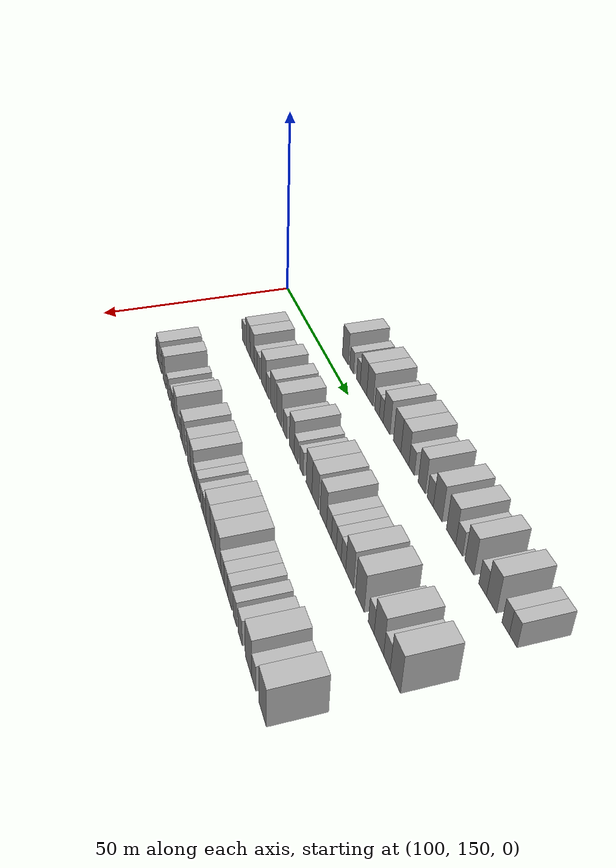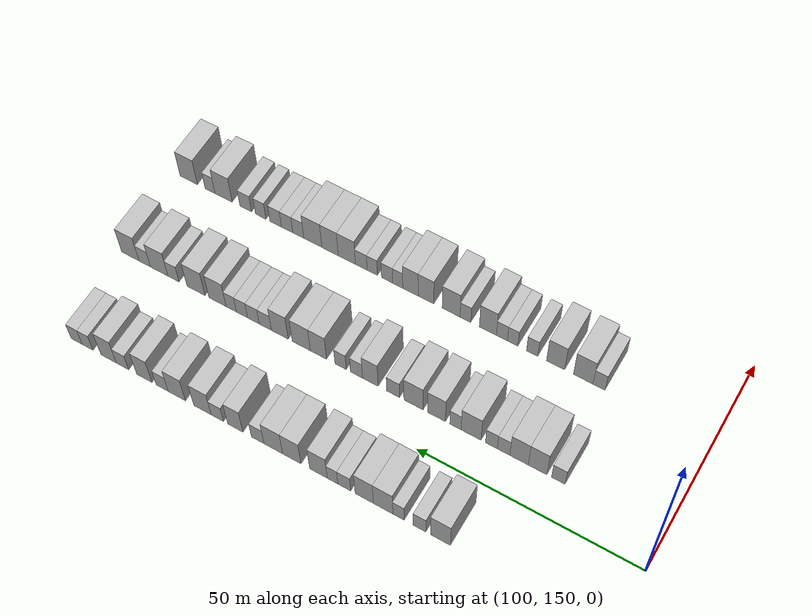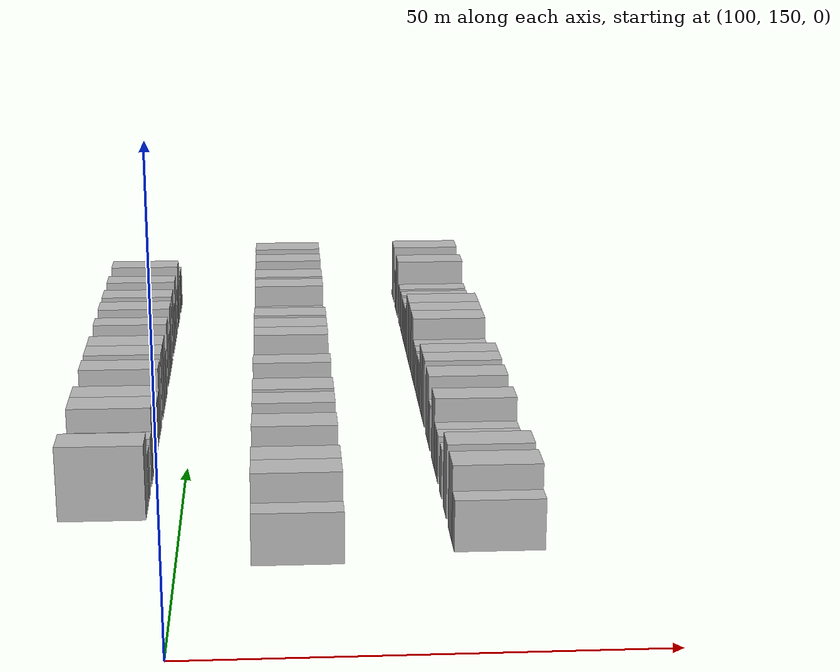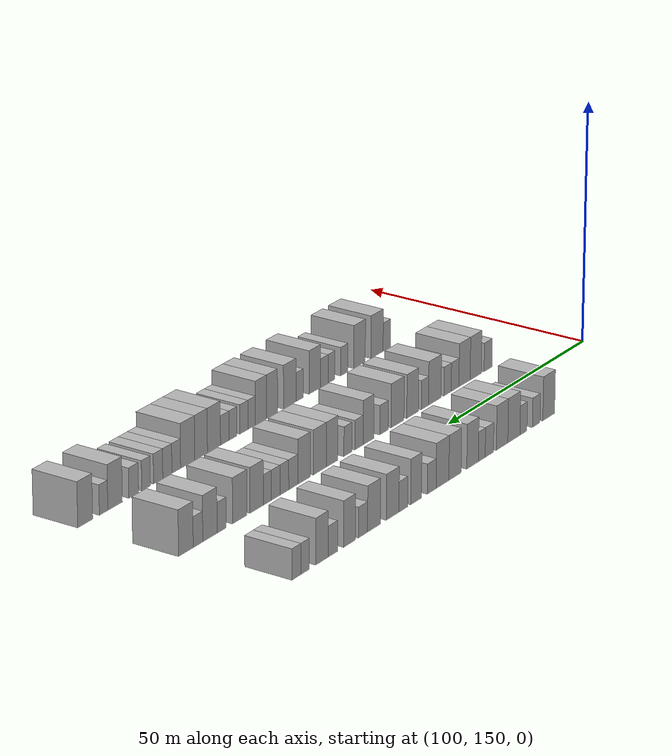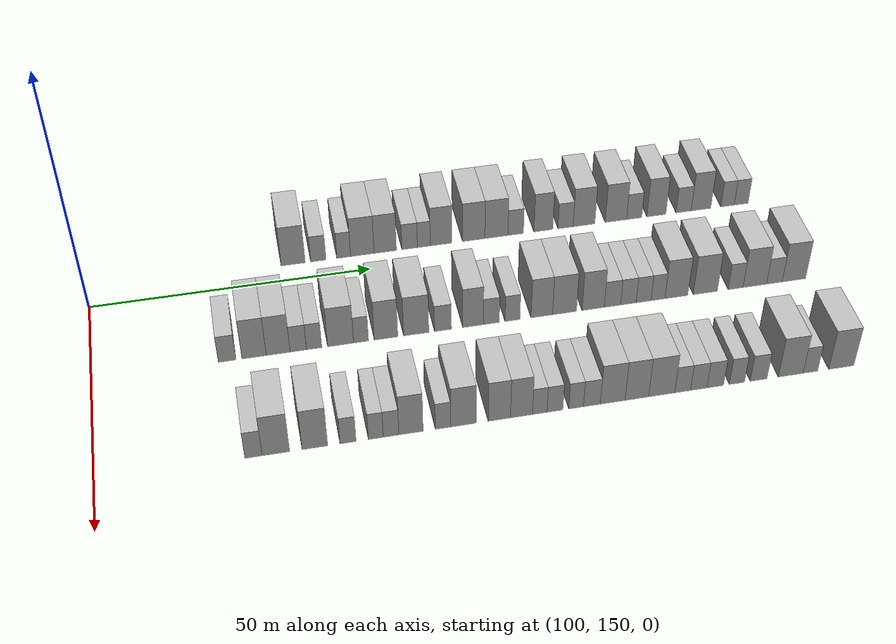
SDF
<sdf version="1.6">
 <world name="default">
  <model name="building_684">
   <static>1</static>
   <pose>91.0000 186.5181 0 0.000000 0.000000 0.000000</pose>
   <link name="link">
    <pose>0 0 4.50 0 0 0</pose>
    <collision name="collision"><geometry><box><size>10.0000 4.3812 9.0000</size></box></geometry></collision>
    <visual name="visual">
     <cast_shadows>0</cast_shadows>
     <geometry><box><size>10.0000 4.3812 9.0000</size></box></geometry>
     <material>
      <script>
       <uri>model://HANNAS_wall/materials/scripts</uri>
       <uri>model://HANNAS_wall/materials/textures</uri>
       <name>vrc/HANNAS_wall</name>
      </script>
     </material>
    </visual>
   </link>
  </model>
  <model name="building_685">
   <static>1</static>
   <pose>91.0000 191.1073 0 0.000000 0.000000 0.000000</pose>
   <link name="link">
    <pose>0 0 3.00 0 0 0</pose>
    <collision name="collision"><geometry><box><size>10.0000 2.7972 6.0000</size></box></geometry></collision>
    <visual name="visual">
     <cast_shadows>0</cast_shadows>
     <geometry><box><size>10.0000 2.7972 6.0000</size></box></geometry>
     <material>
      <script>
       <uri>model://HANNAS_wall/materials/scripts</uri>
       <uri>model://HANNAS_wall/materials/textures</uri>
       <name>vrc/HANNAS_wall</name>
      </script>
     </material>
    </visual>
   </link>
  </model>
  <model name="building_686">
   <static>1</static>
   <pose>91.0000 195.7642 0 0.000000 0.000000 0.000000</pose>
   <link name="link">
    <pose>0 0 3.00 0 0 0</pose>
    <collision name="collision"><geometry><box><size>10.0000 2.5166 6.0000</size></box></geometry></collision>
    <visual name="visual">
     <cast_shadows>0</cast_shadows>
     <geometry><box><size>10.0000 2.5166 6.0000</size></box></geometry>
     <material>
      <script>
       <uri>model://HANNAS_wall/materials/scripts</uri>
       <uri>model://HANNAS_wall/materials/textures</uri>
       <name>vrc/HANNAS_wall</name>
      </script>
     </material>
    </visual>
   </link>
  </model>
  <model name="building_687">
   <static>1</static>
   <pose>91.0000 199.1977 0 0.000000 0.000000 0.000000</pose>
   <link name="link">
    <pose>0 0 4.50 0 0 0</pose>
    <collision name="collision"><geometry><box><size>10.0000 4.3504 9.0000</size></box></geometry></collision>
    <visual name="visual">
     <cast_shadows>0</cast_shadows>
     <geometry><box><size>10.0000 4.3504 9.0000</size></box></geometry>
     <material>
      <script>
       <uri>model://HANNAS_wall/materials/scripts</uri>
       <uri>model://HANNAS_wall/materials/textures</uri>
       <name>vrc/HANNAS_wall</name>
      </script>
     </material>
    </visual>
   </link>
  </model>
  <model name="building_688">
   <static>1</static>
   <pose>91.0000 203.4393 0 0.000000 0.000000 0.000000</pose>
   <link name="link">
    <pose>0 0 4.50 0 0 0</pose>
    <collision name="collision"><geometry><box><size>10.0000 4.1327 9.0000</size></box></geometry></collision>
    <visual name="visual">
     <cast_shadows>0</cast_shadows>
     <geometry><box><size>10.0000 4.1327 9.0000</size></box></geometry>
     <material>
      <script>
       <uri>model://HANNAS_wall/materials/scripts</uri>
       <uri>model://HANNAS_wall/materials/textures</uri>
       <name>vrc/HANNAS_wall</name>
      </script>
     </material>
    </visual>
   </link>
  </model>
  <model name="building_689">
   <static>1</static>
   <pose>91.0000 207.9620 0 0.000000 0.000000 0.000000</pose>
   <link name="link">
    <pose>0 0 3.00 0 0 0</pose>
    <collision name="collision"><geometry><box><size>10.0000 2.9127 6.0000</size></box></geometry></collision>
    <visual name="visual">
     <cast_shadows>0</cast_shadows>
     <geometry><box><size>10.0000 2.9127 6.0000</size></box></geometry>
     <material>
      <script>
       <uri>model://HANNAS_wall/materials/scripts</uri>
       <uri>model://HANNAS_wall/materials/textures</uri>
       <name>vrc/HANNAS_wall</name>
      </script>
     </material>
    </visual>
   </link>
  </model>
  <model name="building_690">
   <static>1</static>
   <pose>91.0000 210.6189 0 0.000000 0.000000 0.000000</pose>
   <link name="link">
    <pose>0 0 3.00 0 0 0</pose>
    <collision name="collision"><geometry><box><size>10.0000 2.4012 6.0000</size></box></geometry></collision>
    <visual name="visual">
     <cast_shadows>0</cast_shadows>
     <geometry><box><size>10.0000 2.4012 6.0000</size></box></geometry>
     <material>
      <script>
       <uri>model://HANNAS_wall/materials/scripts</uri>
       <uri>model://HANNAS_wall/materials/textures</uri>
       <name>vrc/HANNAS_wall</name>
      </script>
     </material>
    </visual>
   </link>
  </model>
  <model name="building_691">
   <static>1</static>
   <pose>91.0000 213.8402 0 0.000000 0.000000 0.000000</pose>
   <link name="link">
    <pose>0 0 4.50 0 0 0</pose>
    <collision name="collision"><geometry><box><size>10.0000 4.0415 9.0000</size></box></geometry></collision>
    <visual name="visual">
     <cast_shadows>0</cast_shadows>
     <geometry><box><size>10.0000 4.0415 9.0000</size></box></geometry>
     <material>
      <script>
       <uri>model://HANNAS_wall/materials/scripts</uri>
       <uri>model://HANNAS_wall/materials/textures</uri>
       <name>vrc/HANNAS_wall</name>
      </script>
     </material>
    </visual>
   </link>
  </model>
  <model name="building_692">
   <static>1</static>
   <pose>91.0000 219.9657 0 0.000000 0.000000 0.000000</pose>
   <link name="link">
    <pose>0 0 4.50 0 0 0</pose>
    <collision name="collision"><geometry><box><size>10.0000 4.2094 9.0000</size></box></geometry></collision>
    <visual name="visual">
     <cast_shadows>0</cast_shadows>
     <geometry><box><size>10.0000 4.2094 9.0000</size></box></geometry>
     <material>
      <script>
       <uri>model://HANNAS_wall/materials/scripts</uri>
       <uri>model://HANNAS_wall/materials/textures</uri>
       <name>vrc/HANNAS_wall</name>
      </script>
     </material>
    </visual>
   </link>
  </model>
  <model name="building_693">
   <static>1</static>
   <pose>91.0000 224.2515 0 0.000000 0.000000 0.000000</pose>
   <link name="link">
    <pose>0 0 4.50 0 0 0</pose>
    <collision name="collision"><geometry><box><size>10.0000 4.3622 9.0000</size></box></geometry></collision>
    <visual name="visual">
     <cast_shadows>0</cast_shadows>
     <geometry><box><size>10.0000 4.3622 9.0000</size></box></geometry>
     <material>
      <script>
       <uri>model://HANNAS_wall/materials/scripts</uri>
       <uri>model://HANNAS_wall/materials/textures</uri>
       <name>vrc/HANNAS_wall</name>
      </script>
     </material>
    </visual>
   </link>
  </model>
  <model name="building_694">
   <static>1</static>
   <pose>91.0000 227.9071 0 0.000000 0.000000 0.000000</pose>
   <link name="link">
    <pose>0 0 3.00 0 0 0</pose>
    <collision name="collision"><geometry><box><size>10.0000 2.9490 6.0000</size></box></geometry></collision>
    <visual name="visual">
     <cast_shadows>0</cast_shadows>
     <geometry><box><size>10.0000 2.9490 6.0000</size></box></geometry>
     <material>
      <script>
       <uri>model://HANNAS_wall/materials/scripts</uri>
       <uri>model://HANNAS_wall/materials/textures</uri>
       <name>vrc/HANNAS_wall</name>
      </script>
     </material>
    </visual>
   </link>
  </model>
  <model name="building_695">
   <static>1</static>
   <pose>91.0000 233.1843 0 0.000000 0.000000 0.000000</pose>
   <link name="link">
    <pose>0 0 4.50 0 0 0</pose>
    <collision name="collision"><geometry><box><size>10.0000 3.6054 9.0000</size></box></geometry></collision>
    <visual name="visual">
     <cast_shadows>0</cast_shadows>
     <geometry><box><size>10.0000 3.6054 9.0000</size></box></geometry>
     <material>
      <script>
       <uri>model://HANNAS_wall/materials/scripts</uri>
       <uri>model://HANNAS_wall/materials/textures</uri>
       <name>vrc/HANNAS_wall</name>
      </script>
     </material>
    </visual>
   </link>
  </model>
  <model name="building_696">
   <static>1</static>
   <pose>91.0000 237.4437 0 0.000000 0.000000 0.000000</pose>
   <link name="link">
    <pose>0 0 3.00 0 0 0</pose>
    <collision name="collision"><geometry><box><size>10.0000 2.9135 6.0000</size></box></geometry></collision>
    <visual name="visual">
     <cast_shadows>0</cast_shadows>
     <geometry><box><size>10.0000 2.9135 6.0000</size></box></geometry>
     <material>
      <script>
       <uri>model://HANNAS_wall/materials/scripts</uri>
       <uri>model://HANNAS_wall/materials/textures</uri>
       <name>vrc/HANNAS_wall</name>
      </script>
     </material>
    </visual>
   </link>
  </model>
  <model name="building_697">
   <static>1</static>
   <pose>91.0000 240.9914 0 0.000000 0.000000 0.000000</pose>
   <link name="link">
    <pose>0 0 4.50 0 0 0</pose>
    <collision name="collision"><geometry><box><size>10.0000 4.1818 9.0000</size></box></geometry></collision>
    <visual name="visual">
     <cast_shadows>0</cast_shadows>
     <geometry><box><size>10.0000 4.1818 9.0000</size></box></geometry>
     <material>
      <script>
       <uri>model://HANNAS_wall/materials/scripts</uri>
       <uri>model://HANNAS_wall/materials/textures</uri>
       <name>vrc/HANNAS_wall</name>
      </script>
     </material>
    </visual>
   </link>
  </model>
  <model name="building_698">
   <static>1</static>
   <pose>91.0000 247.1511 0 0.000000 0.000000 0.000000</pose>
   <link name="link">
    <pose>0 0 4.50 0 0 0</pose>
    <collision name="collision"><geometry><box><size>10.0000 4.1376 9.0000</size></box></geometry></collision>
    <visual name="visual">
     <cast_shadows>0</cast_shadows>
     <geometry><box><size>10.0000 4.1376 9.0000</size></box></geometry>
     <material>
      <script>
       <uri>model://HANNAS_wall/materials/scripts</uri>
       <uri>model://HANNAS_wall/materials/textures</uri>
       <name>vrc/HANNAS_wall</name>
      </script>
     </material>
    </visual>
   </link>
  </model>
  <model name="building_699">
   <static>1</static>
   <pose>91.0000 250.7007 0 0.000000 0.000000 0.000000</pose>
   <link name="link">
    <pose>0 0 3.00 0 0 0</pose>
    <collision name="collision"><geometry><box><size>10.0000 2.9617 6.0000</size></box></geometry></collision>
    <visual name="visual">
     <cast_shadows>0</cast_shadows>
     <geometry><box><size>10.0000 2.9617 6.0000</size></box></geometry>
     <material>
      <script>
       <uri>model://HANNAS_wall/materials/scripts</uri>
       <uri>model://HANNAS_wall/materials/textures</uri>
       <name>vrc/HANNAS_wall</name>
      </script>
     </material>
    </visual>
   </link>
  </model>
  <model name="building_700">
   <static>1</static>
   <pose>91.0000 255.0379 0 0.000000 0.000000 0.000000</pose>
   <link name="link">
    <pose>0 0 4.50 0 0 0</pose>
    <collision name="collision"><geometry><box><size>10.0000 3.7127 9.0000</size></box></geometry></collision>
    <visual name="visual">
     <cast_shadows>0</cast_shadows>
     <geometry><box><size>10.0000 3.7127 9.0000</size></box></geometry>
     <material>
      <script>
       <uri>model://HANNAS_wall/materials/scripts</uri>
       <uri>model://HANNAS_wall/materials/textures</uri>
       <name>vrc/HANNAS_wall</name>
      </script>
     </material>
    </visual>
   </link>
  </model>
  <model name="building_701">
   <static>1</static>
   <pose>91.0000 260.3903 0 0.000000 0.000000 0.000000</pose>
   <link name="link">
    <pose>0 0 3.00 0 0 0</pose>
    <collision name="collision"><geometry><box><size>10.0000 2.9921 6.0000</size></box></geometry></collision>
    <visual name="visual">
     <cast_shadows>0</cast_shadows>
     <geometry><box><size>10.0000 2.9921 6.0000</size></box></geometry>
     <material>
      <script>
       <uri>model://HANNAS_wall/materials/scripts</uri>
       <uri>model://HANNAS_wall/materials/textures</uri>
       <name>vrc/HANNAS_wall</name>
      </script>
     </material>
    </visual>
   </link>
  </model>
  <model name="building_702">
   <static>1</static>
   <pose>91.0000 263.8147 0 0.000000 0.000000 0.000000</pose>
   <link name="link">
    <pose>0 0 4.50 0 0 0</pose>
    <collision name="collision"><geometry><box><size>10.0000 3.8567 9.0000</size></box></geometry></collision>
    <visual name="visual">
     <cast_shadows>0</cast_shadows>
     <geometry><box><size>10.0000 3.8567 9.0000</size></box></geometry>
     <material>
      <script>
       <uri>model://HANNAS_wall/materials/scripts</uri>
       <uri>model://HANNAS_wall/materials/textures</uri>
       <name>vrc/HANNAS_wall</name>
      </script>
     </material>
    </visual>
   </link>
  </model>
  <model name="building_703">
   <static>1</static>
   <pose>91.0000 269.0762 0 0.000000 0.000000 0.000000</pose>
   <link name="link">
    <pose>0 0 3.00 0 0 0</pose>
    <collision name="collision"><geometry><box><size>10.0000 2.6662 6.0000</size></box></geometry></collision>
    <visual name="visual">
     <cast_shadows>0</cast_shadows>
     <geometry><box><size>10.0000 2.6662 6.0000</size></box></geometry>
     <material>
      <script>
       <uri>model://HANNAS_wall/materials/scripts</uri>
       <uri>model://HANNAS_wall/materials/textures</uri>
       <name>vrc/HANNAS_wall</name>
      </script>
     </material>
    </visual>
   </link>
  </model>
  <model name="building_704">
   <static>1</static>
   <pose>91.0000 271.7817 0 0.000000 0.000000 0.000000</pose>
   <link name="link">
    <pose>0 0 3.00 0 0 0</pose>
    <collision name="collision"><geometry><box><size>10.0000 2.7449 6.0000</size></box></geometry></collision>
    <visual name="visual">
     <cast_shadows>0</cast_shadows>
     <geometry><box><size>10.0000 2.7449 6.0000</size></box></geometry>
     <material>
      <script>
       <uri>model://HANNAS_wall/materials/scripts</uri>
       <uri>model://HANNAS_wall/materials/textures</uri>
       <name>vrc/HANNAS_wall</name>
      </script>
     </material>
    </visual>
   </link>
  </model>
  <model name="building_860">
   <static>1</static>
   <pose>113.0000 172.7475 0 0.000000 0.000000 0.000000</pose>
   <link name="link">
    <pose>0 0 3.00 0 0 0</pose>
    <collision name="collision"><geometry><box><size>10.0000 2.9808 6.0000</size></box></geometry></collision>
    <visual name="visual">
     <cast_shadows>0</cast_shadows>
     <geometry><box><size>10.0000 2.9808 6.0000</size></box></geometry>
     <material>
      <script>
       <uri>model://HANNAS_wall/materials/scripts</uri>
       <uri>model://HANNAS_wall/materials/textures</uri>
       <name>vrc/HANNAS_wall</name>
      </script>
     </material>
    </visual>
   </link>
  </model>
  <model name="building_861">
   <static>1</static>
   <pose>113.0000 177.2981 0 0.000000 0.000000 0.000000</pose>
   <link name="link">
    <pose>0 0 4.50 0 0 0</pose>
    <collision name="collision"><geometry><box><size>10.0000 4.1203 9.0000</size></box></geometry></collision>
    <visual name="visual">
     <cast_shadows>0</cast_shadows>
     <geometry><box><size>10.0000 4.1203 9.0000</size></box></geometry>
     <material>
      <script>
       <uri>model://HANNAS_wall/materials/scripts</uri>
       <uri>model://HANNAS_wall/materials/textures</uri>
       <name>vrc/HANNAS_wall</name>
      </script>
     </material>
    </visual>
   </link>
  </model>
  <model name="building_862">
   <static>1</static>
   <pose>113.0000 181.4016 0 0.000000 0.000000 0.000000</pose>
   <link name="link">
    <pose>0 0 4.50 0 0 0</pose>
    <collision name="collision"><geometry><box><size>10.0000 4.0867 9.0000</size></box></geometry></collision>
    <visual name="visual">
     <cast_shadows>0</cast_shadows>
     <geometry><box><size>10.0000 4.0867 9.0000</size></box></geometry>
     <material>
      <script>
       <uri>model://HANNAS_wall/materials/scripts</uri>
       <uri>model://HANNAS_wall/materials/textures</uri>
       <name>vrc/HANNAS_wall</name>
      </script>
     </material>
    </visual>
   </link>
  </model>
  <model name="building_863">
   <static>1</static>
   <pose>113.0000 184.8382 0 0.000000 0.000000 0.000000</pose>
   <link name="link">
    <pose>0 0 3.00 0 0 0</pose>
    <collision name="collision"><geometry><box><size>10.0000 2.7865 6.0000</size></box></geometry></collision>
    <visual name="visual">
     <cast_shadows>0</cast_shadows>
     <geometry><box><size>10.0000 2.7865 6.0000</size></box></geometry>
     <material>
      <script>
       <uri>model://HANNAS_wall/materials/scripts</uri>
       <uri>model://HANNAS_wall/materials/textures</uri>
       <name>vrc/HANNAS_wall</name>
      </script>
     </material>
    </visual>
   </link>
  </model>
  <model name="building_864">
   <static>1</static>
   <pose>113.0000 187.5560 0 0.000000 0.000000 0.000000</pose>
   <link name="link">
    <pose>0 0 3.00 0 0 0</pose>
    <collision name="collision"><geometry><box><size>10.0000 2.6491 6.0000</size></box></geometry></collision>
    <visual name="visual">
     <cast_shadows>0</cast_shadows>
     <geometry><box><size>10.0000 2.6491 6.0000</size></box></geometry>
     <material>
      <script>
       <uri>model://HANNAS_wall/materials/scripts</uri>
       <uri>model://HANNAS_wall/materials/textures</uri>
       <name>vrc/HANNAS_wall</name>
      </script>
     </material>
    </visual>
   </link>
  </model>
  <model name="building_865">
   <static>1</static>
   <pose>113.0000 192.1257 0 0.000000 0.000000 0.000000</pose>
   <link name="link">
    <pose>0 0 4.50 0 0 0</pose>
    <collision name="collision"><geometry><box><size>10.0000 4.4904 9.0000</size></box></geometry></collision>
    <visual name="visual">
     <cast_shadows>0</cast_shadows>
     <geometry><box><size>10.0000 4.4904 9.0000</size></box></geometry>
     <material>
      <script>
       <uri>model://HANNAS_wall/materials/scripts</uri>
       <uri>model://HANNAS_wall/materials/textures</uri>
       <name>vrc/HANNAS_wall</name>
      </script>
     </material>
    </visual>
   </link>
  </model>
  <model name="building_866">
   <static>1</static>
   <pose>113.0000 195.6603 0 0.000000 0.000000 0.000000</pose>
   <link name="link">
    <pose>0 0 3.00 0 0 0</pose>
    <collision name="collision"><geometry><box><size>10.0000 2.5788 6.0000</size></box></geometry></collision>
    <visual name="visual">
     <cast_shadows>0</cast_shadows>
     <geometry><box><size>10.0000 2.5788 6.0000</size></box></geometry>
     <material>
      <script>
       <uri>model://HANNAS_wall/materials/scripts</uri>
       <uri>model://HANNAS_wall/materials/textures</uri>
       <name>vrc/HANNAS_wall</name>
      </script>
     </material>
    </visual>
   </link>
  </model>
  <model name="building_867">
   <static>1</static>
   <pose>113.0000 200.0014 0 0.000000 0.000000 0.000000</pose>
   <link name="link">
    <pose>0 0 4.50 0 0 0</pose>
    <collision name="collision"><geometry><box><size>10.0000 4.1036 9.0000</size></box></geometry></collision>
    <visual name="visual">
     <cast_shadows>0</cast_shadows>
     <geometry><box><size>10.0000 4.1036 9.0000</size></box></geometry>
     <material>
      <script>
       <uri>model://HANNAS_wall/materials/scripts</uri>
       <uri>model://HANNAS_wall/materials/textures</uri>
       <name>vrc/HANNAS_wall</name>
      </script>
     </material>
    </visual>
   </link>
  </model>
  <model name="building_868">
   <static>1</static>
   <pose>113.0000 205.2657 0 0.000000 0.000000 0.000000</pose>
   <link name="link">
    <pose>0 0 4.50 0 0 0</pose>
    <collision name="collision"><geometry><box><size>10.0000 4.4249 9.0000</size></box></geometry></collision>
    <visual name="visual">
     <cast_shadows>0</cast_shadows>
     <geometry><box><size>10.0000 4.4249 9.0000</size></box></geometry>
     <material>
      <script>
       <uri>model://HANNAS_wall/materials/scripts</uri>
       <uri>model://HANNAS_wall/materials/textures</uri>
       <name>vrc/HANNAS_wall</name>
      </script>
     </material>
    </visual>
   </link>
  </model>
  <model name="building_869">
   <static>1</static>
   <pose>113.0000 209.9729 0 0.000000 0.000000 0.000000</pose>
   <link name="link">
    <pose>0 0 3.00 0 0 0</pose>
    <collision name="collision"><geometry><box><size>10.0000 2.9896 6.0000</size></box></geometry></collision>
    <visual name="visual">
     <cast_shadows>0</cast_shadows>
     <geometry><box><size>10.0000 2.9896 6.0000</size></box></geometry>
     <material>
      <script>
       <uri>model://HANNAS_wall/materials/scripts</uri>
       <uri>model://HANNAS_wall/materials/textures</uri>
       <name>vrc/HANNAS_wall</name>
      </script>
     </material>
    </visual>
   </link>
  </model>
  <model name="building_870">
   <static>1</static>
   <pose>113.0000 215.2885 0 0.000000 0.000000 0.000000</pose>
   <link name="link">
    <pose>0 0 4.50 0 0 0</pose>
    <collision name="collision"><geometry><box><size>10.0000 3.6417 9.0000</size></box></geometry></collision>
    <visual name="visual">
     <cast_shadows>0</cast_shadows>
     <geometry><box><size>10.0000 3.6417 9.0000</size></box></geometry>
     <material>
      <script>
       <uri>model://HANNAS_wall/materials/scripts</uri>
       <uri>model://HANNAS_wall/materials/textures</uri>
       <name>vrc/HANNAS_wall</name>
      </script>
     </material>
    </visual>
   </link>
  </model>
  <model name="building_871">
   <static>1</static>
   <pose>113.0000 218.5344 0 0.000000 0.000000 0.000000</pose>
   <link name="link">
    <pose>0 0 3.00 0 0 0</pose>
    <collision name="collision"><geometry><box><size>10.0000 2.8501 6.0000</size></box></geometry></collision>
    <visual name="visual">
     <cast_shadows>0</cast_shadows>
     <geometry><box><size>10.0000 2.8501 6.0000</size></box></geometry>
     <material>
      <script>
       <uri>model://HANNAS_wall/materials/scripts</uri>
       <uri>model://HANNAS_wall/materials/textures</uri>
       <name>vrc/HANNAS_wall</name>
      </script>
     </material>
    </visual>
   </link>
  </model>
  <model name="building_872">
   <static>1</static>
   <pose>113.0000 222.2909 0 0.000000 0.000000 0.000000</pose>
   <link name="link">
    <pose>0 0 3.00 0 0 0</pose>
    <collision name="collision"><geometry><box><size>10.0000 2.6629 6.0000</size></box></geometry></collision>
    <visual name="visual">
     <cast_shadows>0</cast_shadows>
     <geometry><box><size>10.0000 2.6629 6.0000</size></box></geometry>
     <material>
      <script>
       <uri>model://HANNAS_wall/materials/scripts</uri>
       <uri>model://HANNAS_wall/materials/textures</uri>
       <name>vrc/HANNAS_wall</name>
      </script>
     </material>
    </visual>
   </link>
  </model>
  <model name="building_873">
   <static>1</static>
   <pose>113.0000 227.5500 0 0.000000 0.000000 0.000000</pose>
   <link name="link">
    <pose>0 0 4.50 0 0 0</pose>
    <collision name="collision"><geometry><box><size>10.0000 3.8553 9.0000</size></box></geometry></collision>
    <visual name="visual">
     <cast_shadows>0</cast_shadows>
     <geometry><box><size>10.0000 3.8553 9.0000</size></box></geometry>
     <material>
      <script>
       <uri>model://HANNAS_wall/materials/scripts</uri>
       <uri>model://HANNAS_wall/materials/textures</uri>
       <name>vrc/HANNAS_wall</name>
      </script>
     </material>
    </visual>
   </link>
  </model>
  <model name="building_874">
   <static>1</static>
   <pose>113.0000 231.6464 0 0.000000 0.000000 0.000000</pose>
   <link name="link">
    <pose>0 0 4.50 0 0 0</pose>
    <collision name="collision"><geometry><box><size>10.0000 4.3374 9.0000</size></box></geometry></collision>
    <visual name="visual">
     <cast_shadows>0</cast_shadows>
     <geometry><box><size>10.0000 4.3374 9.0000</size></box></geometry>
     <material>
      <script>
       <uri>model://HANNAS_wall/materials/scripts</uri>
       <uri>model://HANNAS_wall/materials/textures</uri>
       <name>vrc/HANNAS_wall</name>
      </script>
     </material>
    </visual>
   </link>
  </model>
  <model name="building_875">
   <static>1</static>
   <pose>113.0000 236.8395 0 0.000000 0.000000 0.000000</pose>
   <link name="link">
    <pose>0 0 4.50 0 0 0</pose>
    <collision name="collision"><geometry><box><size>10.0000 4.0487 9.0000</size></box></geometry></collision>
    <visual name="visual">
     <cast_shadows>0</cast_shadows>
     <geometry><box><size>10.0000 4.0487 9.0000</size></box></geometry>
     <material>
      <script>
       <uri>model://HANNAS_wall/materials/scripts</uri>
       <uri>model://HANNAS_wall/materials/textures</uri>
       <name>vrc/HANNAS_wall</name>
      </script>
     </material>
    </visual>
   </link>
  </model>
  <model name="building_876">
   <static>1</static>
   <pose>113.0000 240.3445 0 0.000000 0.000000 0.000000</pose>
   <link name="link">
    <pose>0 0 3.00 0 0 0</pose>
    <collision name="collision"><geometry><box><size>10.0000 2.9614 6.0000</size></box></geometry></collision>
    <visual name="visual">
     <cast_shadows>0</cast_shadows>
     <geometry><box><size>10.0000 2.9614 6.0000</size></box></geometry>
     <material>
      <script>
       <uri>model://HANNAS_wall/materials/scripts</uri>
       <uri>model://HANNAS_wall/materials/textures</uri>
       <name>vrc/HANNAS_wall</name>
      </script>
     </material>
    </visual>
   </link>
  </model>
  <model name="building_877">
   <static>1</static>
   <pose>113.0000 243.2461 0 0.000000 0.000000 0.000000</pose>
   <link name="link">
    <pose>0 0 3.00 0 0 0</pose>
    <collision name="collision"><geometry><box><size>10.0000 2.8418 6.0000</size></box></geometry></collision>
    <visual name="visual">
     <cast_shadows>0</cast_shadows>
     <geometry><box><size>10.0000 2.8418 6.0000</size></box></geometry>
     <material>
      <script>
       <uri>model://HANNAS_wall/materials/scripts</uri>
       <uri>model://HANNAS_wall/materials/textures</uri>
       <name>vrc/HANNAS_wall</name>
      </script>
     </material>
    </visual>
   </link>
  </model>
  <model name="building_878">
   <static>1</static>
   <pose>113.0000 246.0420 0 0.000000 0.000000 0.000000</pose>
   <link name="link">
    <pose>0 0 3.00 0 0 0</pose>
    <collision name="collision"><geometry><box><size>10.0000 2.7499 6.0000</size></box></geometry></collision>
    <visual name="visual">
     <cast_shadows>0</cast_shadows>
     <geometry><box><size>10.0000 2.7499 6.0000</size></box></geometry>
     <material>
      <script>
       <uri>model://HANNAS_wall/materials/scripts</uri>
       <uri>model://HANNAS_wall/materials/textures</uri>
       <name>vrc/HANNAS_wall</name>
      </script>
     </material>
    </visual>
   </link>
  </model>
  <model name="building_879">
   <static>1</static>
   <pose>113.0000 248.6914 0 0.000000 0.000000 0.000000</pose>
   <link name="link">
    <pose>0 0 3.00 0 0 0</pose>
    <collision name="collision"><geometry><box><size>10.0000 2.5489 6.0000</size></box></geometry></collision>
    <visual name="visual">
     <cast_shadows>0</cast_shadows>
     <geometry><box><size>10.0000 2.5489 6.0000</size></box></geometry>
     <material>
      <script>
       <uri>model://HANNAS_wall/materials/scripts</uri>
       <uri>model://HANNAS_wall/materials/textures</uri>
       <name>vrc/HANNAS_wall</name>
      </script>
     </material>
    </visual>
   </link>
  </model>
  <model name="building_880">
   <static>1</static>
   <pose>113.0000 252.0803 0 0.000000 0.000000 0.000000</pose>
   <link name="link">
    <pose>0 0 4.50 0 0 0</pose>
    <collision name="collision"><geometry><box><size>10.0000 4.2289 9.0000</size></box></geometry></collision>
    <visual name="visual">
     <cast_shadows>0</cast_shadows>
     <geometry><box><size>10.0000 4.2289 9.0000</size></box></geometry>
     <material>
      <script>
       <uri>model://HANNAS_wall/materials/scripts</uri>
       <uri>model://HANNAS_wall/materials/textures</uri>
       <name>vrc/HANNAS_wall</name>
      </script>
     </material>
    </visual>
   </link>
  </model>
  <model name="building_881">
   <static>1</static>
   <pose>113.0000 257.4371 0 0.000000 0.000000 0.000000</pose>
   <link name="link">
    <pose>0 0 4.50 0 0 0</pose>
    <collision name="collision"><geometry><box><size>10.0000 4.4847 9.0000</size></box></geometry></collision>
    <visual name="visual">
     <cast_shadows>0</cast_shadows>
     <geometry><box><size>10.0000 4.4847 9.0000</size></box></geometry>
     <material>
      <script>
       <uri>model://HANNAS_wall/materials/scripts</uri>
       <uri>model://HANNAS_wall/materials/textures</uri>
       <name>vrc/HANNAS_wall</name>
      </script>
     </material>
    </visual>
   </link>
  </model>
  <model name="building_882">
   <static>1</static>
   <pose>113.0000 263.0799 0 0.000000 0.000000 0.000000</pose>
   <link name="link">
    <pose>0 0 3.00 0 0 0</pose>
    <collision name="collision"><geometry><box><size>10.0000 2.8009 6.0000</size></box></geometry></collision>
    <visual name="visual">
     <cast_shadows>0</cast_shadows>
     <geometry><box><size>10.0000 2.8009 6.0000</size></box></geometry>
     <material>
      <script>
       <uri>model://HANNAS_wall/materials/scripts</uri>
       <uri>model://HANNAS_wall/materials/textures</uri>
       <name>vrc/HANNAS_wall</name>
      </script>
     </material>
    </visual>
   </link>
  </model>
  <model name="building_883">
   <static>1</static>
   <pose>113.0000 266.6903 0 0.000000 0.000000 0.000000</pose>
   <link name="link">
    <pose>0 0 4.50 0 0 0</pose>
    <collision name="collision"><geometry><box><size>10.0000 4.4198 9.0000</size></box></geometry></collision>
    <visual name="visual">
     <cast_shadows>0</cast_shadows>
     <geometry><box><size>10.0000 4.4198 9.0000</size></box></geometry>
     <material>
      <script>
       <uri>model://HANNAS_wall/materials/scripts</uri>
       <uri>model://HANNAS_wall/materials/textures</uri>
       <name>vrc/HANNAS_wall</name>
      </script>
     </material>
    </visual>
   </link>
  </model>
  <model name="building_884">
   <static>1</static>
   <pose>113.0000 270.3656 0 0.000000 0.000000 0.000000</pose>
   <link name="link">
    <pose>0 0 3.00 0 0 0</pose>
    <collision name="collision"><geometry><box><size>10.0000 2.9308 6.0000</size></box></geometry></collision>
    <visual name="visual">
     <cast_shadows>0</cast_shadows>
     <geometry><box><size>10.0000 2.9308 6.0000</size></box></geometry>
     <material>
      <script>
       <uri>model://HANNAS_wall/materials/scripts</uri>
       <uri>model://HANNAS_wall/materials/textures</uri>
       <name>vrc/HANNAS_wall</name>
      </script>
     </material>
    </visual>
   </link>
  </model>
  <model name="building_885">
   <static>1</static>
   <pose>113.0000 274.0404 0 0.000000 0.000000 0.000000</pose>
   <link name="link">
    <pose>0 0 4.50 0 0 0</pose>
    <collision name="collision"><geometry><box><size>10.0000 4.4188 9.0000</size></box></geometry></collision>
    <visual name="visual">
     <cast_shadows>0</cast_shadows>
     <geometry><box><size>10.0000 4.4188 9.0000</size></box></geometry>
     <material>
      <script>
       <uri>model://HANNAS_wall/materials/scripts</uri>
       <uri>model://HANNAS_wall/materials/textures</uri>
       <name>vrc/HANNAS_wall</name>
      </script>
     </material>
    </visual>
   </link>
  </model>
  <model name="building_1046">
   <static>1</static>
   <pose>135.0000 175.0672 0 0.000000 0.000000 0.000000</pose>
   <link name="link">
    <pose>0 0 3.00 0 0 0</pose>
    <collision name="collision"><geometry><box><size>10.0000 2.7206 6.0000</size></box></geometry></collision>
    <visual name="visual">
     <cast_shadows>0</cast_shadows>
     <geometry><box><size>10.0000 2.7206 6.0000</size></box></geometry>
     <material>
      <script>
       <uri>model://HANNAS_wall/materials/scripts</uri>
       <uri>model://HANNAS_wall/materials/textures</uri>
       <name>vrc/HANNAS_wall</name>
      </script>
     </material>
    </visual>
   </link>
  </model>
  <model name="building_1047">
   <static>1</static>
   <pose>135.0000 178.6287 0 0.000000 0.000000 0.000000</pose>
   <link name="link">
    <pose>0 0 4.50 0 0 0</pose>
    <collision name="collision"><geometry><box><size>10.0000 4.4024 9.0000</size></box></geometry></collision>
    <visual name="visual">
     <cast_shadows>0</cast_shadows>
     <geometry><box><size>10.0000 4.4024 9.0000</size></box></geometry>
     <material>
      <script>
       <uri>model://HANNAS_wall/materials/scripts</uri>
       <uri>model://HANNAS_wall/materials/textures</uri>
       <name>vrc/HANNAS_wall</name>
      </script>
     </material>
    </visual>
   </link>
  </model>
  <model name="building_1048">
   <static>1</static>
   <pose>135.0000 184.8887 0 0.000000 0.000000 0.000000</pose>
   <link name="link">
    <pose>0 0 4.50 0 0 0</pose>
    <collision name="collision"><geometry><box><size>10.0000 4.1177 9.0000</size></box></geometry></collision>
    <visual name="visual">
     <cast_shadows>0</cast_shadows>
     <geometry><box><size>10.0000 4.1177 9.0000</size></box></geometry>
     <material>
      <script>
       <uri>model://HANNAS_wall/materials/scripts</uri>
       <uri>model://HANNAS_wall/materials/textures</uri>
       <name>vrc/HANNAS_wall</name>
      </script>
     </material>
    </visual>
   </link>
  </model>
  <model name="building_1049">
   <static>1</static>
   <pose>135.0000 190.2447 0 0.000000 0.000000 0.000000</pose>
   <link name="link">
    <pose>0 0 3.00 0 0 0</pose>
    <collision name="collision"><geometry><box><size>10.0000 2.5943 6.0000</size></box></geometry></collision>
    <visual name="visual">
     <cast_shadows>0</cast_shadows>
     <geometry><box><size>10.0000 2.5943 6.0000</size></box></geometry>
     <material>
      <script>
       <uri>model://HANNAS_wall/materials/scripts</uri>
       <uri>model://HANNAS_wall/materials/textures</uri>
       <name>vrc/HANNAS_wall</name>
      </script>
     </material>
    </visual>
   </link>
  </model>
  <model name="building_1050">
   <static>1</static>
   <pose>135.0000 194.7509 0 0.000000 0.000000 0.000000</pose>
   <link name="link">
    <pose>0 0 3.00 0 0 0</pose>
    <collision name="collision"><geometry><box><size>10.0000 2.4181 6.0000</size></box></geometry></collision>
    <visual name="visual">
     <cast_shadows>0</cast_shadows>
     <geometry><box><size>10.0000 2.4181 6.0000</size></box></geometry>
     <material>
      <script>
       <uri>model://HANNAS_wall/materials/scripts</uri>
       <uri>model://HANNAS_wall/materials/textures</uri>
       <name>vrc/HANNAS_wall</name>
      </script>
     </material>
    </visual>
   </link>
  </model>
  <model name="building_1051">
   <static>1</static>
   <pose>135.0000 197.2373 0 0.000000 0.000000 0.000000</pose>
   <link name="link">
    <pose>0 0 3.00 0 0 0</pose>
    <collision name="collision"><geometry><box><size>10.0000 2.5547 6.0000</size></box></geometry></collision>
    <visual name="visual">
     <cast_shadows>0</cast_shadows>
     <geometry><box><size>10.0000 2.5547 6.0000</size></box></geometry>
     <material>
      <script>
       <uri>model://HANNAS_wall/materials/scripts</uri>
       <uri>model://HANNAS_wall/materials/textures</uri>
       <name>vrc/HANNAS_wall</name>
      </script>
     </material>
    </visual>
   </link>
  </model>
  <model name="building_1052">
   <static>1</static>
   <pose>135.0000 200.5044 0 0.000000 0.000000 0.000000</pose>
   <link name="link">
    <pose>0 0 4.50 0 0 0</pose>
    <collision name="collision"><geometry><box><size>10.0000 3.9795 9.0000</size></box></geometry></collision>
    <visual name="visual">
     <cast_shadows>0</cast_shadows>
     <geometry><box><size>10.0000 3.9795 9.0000</size></box></geometry>
     <material>
      <script>
       <uri>model://HANNAS_wall/materials/scripts</uri>
       <uri>model://HANNAS_wall/materials/textures</uri>
       <name>vrc/HANNAS_wall</name>
      </script>
     </material>
    </visual>
   </link>
  </model>
  <model name="building_1053">
   <static>1</static>
   <pose>135.0000 205.7530 0 0.000000 0.000000 0.000000</pose>
   <link name="link">
    <pose>0 0 3.00 0 0 0</pose>
    <collision name="collision"><geometry><box><size>10.0000 2.5178 6.0000</size></box></geometry></collision>
    <visual name="visual">
     <cast_shadows>0</cast_shadows>
     <geometry><box><size>10.0000 2.5178 6.0000</size></box></geometry>
     <material>
      <script>
       <uri>model://HANNAS_wall/materials/scripts</uri>
       <uri>model://HANNAS_wall/materials/textures</uri>
       <name>vrc/HANNAS_wall</name>
      </script>
     </material>
    </visual>
   </link>
  </model>
  <model name="building_1054">
   <static>1</static>
   <pose>135.0000 209.1312 0 0.000000 0.000000 0.000000</pose>
   <link name="link">
    <pose>0 0 4.50 0 0 0</pose>
    <collision name="collision"><geometry><box><size>10.0000 4.2385 9.0000</size></box></geometry></collision>
    <visual name="visual">
     <cast_shadows>0</cast_shadows>
     <geometry><box><size>10.0000 4.2385 9.0000</size></box></geometry>
     <material>
      <script>
       <uri>model://HANNAS_wall/materials/scripts</uri>
       <uri>model://HANNAS_wall/materials/textures</uri>
       <name>vrc/HANNAS_wall</name>
      </script>
     </material>
    </visual>
   </link>
  </model>
  <model name="building_1055">
   <static>1</static>
   <pose>135.0000 215.1141 0 0.000000 0.000000 0.000000</pose>
   <link name="link">
    <pose>0 0 4.50 0 0 0</pose>
    <collision name="collision"><geometry><box><size>10.0000 3.7274 9.0000</size></box></geometry></collision>
    <visual name="visual">
     <cast_shadows>0</cast_shadows>
     <geometry><box><size>10.0000 3.7274 9.0000</size></box></geometry>
     <material>
      <script>
       <uri>model://HANNAS_wall/materials/scripts</uri>
       <uri>model://HANNAS_wall/materials/textures</uri>
       <name>vrc/HANNAS_wall</name>
      </script>
     </material>
    </visual>
   </link>
  </model>
  <model name="building_1056">
   <static>1</static>
   <pose>135.0000 218.8205 0 0.000000 0.000000 0.000000</pose>
   <link name="link">
    <pose>0 0 4.50 0 0 0</pose>
    <collision name="collision"><geometry><box><size>10.0000 3.6854 9.0000</size></box></geometry></collision>
    <visual name="visual">
     <cast_shadows>0</cast_shadows>
     <geometry><box><size>10.0000 3.6854 9.0000</size></box></geometry>
     <material>
      <script>
       <uri>model://HANNAS_wall/materials/scripts</uri>
       <uri>model://HANNAS_wall/materials/textures</uri>
       <name>vrc/HANNAS_wall</name>
      </script>
     </material>
    </visual>
   </link>
  </model>
  <model name="building_1057">
   <static>1</static>
   <pose>135.0000 221.8878 0 0.000000 0.000000 0.000000</pose>
   <link name="link">
    <pose>0 0 3.00 0 0 0</pose>
    <collision name="collision"><geometry><box><size>10.0000 2.4492 6.0000</size></box></geometry></collision>
    <visual name="visual">
     <cast_shadows>0</cast_shadows>
     <geometry><box><size>10.0000 2.4492 6.0000</size></box></geometry>
     <material>
      <script>
       <uri>model://HANNAS_wall/materials/scripts</uri>
       <uri>model://HANNAS_wall/materials/textures</uri>
       <name>vrc/HANNAS_wall</name>
      </script>
     </material>
    </visual>
   </link>
  </model>
  <model name="building_1058">
   <static>1</static>
   <pose>135.0000 224.4463 0 0.000000 0.000000 0.000000</pose>
   <link name="link">
    <pose>0 0 3.00 0 0 0</pose>
    <collision name="collision"><geometry><box><size>10.0000 2.6678 6.0000</size></box></geometry></collision>
    <visual name="visual">
     <cast_shadows>0</cast_shadows>
     <geometry><box><size>10.0000 2.6678 6.0000</size></box></geometry>
     <material>
      <script>
       <uri>model://HANNAS_wall/materials/scripts</uri>
       <uri>model://HANNAS_wall/materials/textures</uri>
       <name>vrc/HANNAS_wall</name>
      </script>
     </material>
    </visual>
   </link>
  </model>
  <model name="building_1059">
   <static>1</static>
   <pose>135.0000 228.0276 0 0.000000 0.000000 0.000000</pose>
   <link name="link">
    <pose>0 0 3.00 0 0 0</pose>
    <collision name="collision"><geometry><box><size>10.0000 2.4950 6.0000</size></box></geometry></collision>
    <visual name="visual">
     <cast_shadows>0</cast_shadows>
     <geometry><box><size>10.0000 2.4950 6.0000</size></box></geometry>
     <material>
      <script>
       <uri>model://HANNAS_wall/materials/scripts</uri>
       <uri>model://HANNAS_wall/materials/textures</uri>
       <name>vrc/HANNAS_wall</name>
      </script>
     </material>
    </visual>
   </link>
  </model>
  <model name="building_1060">
   <static>1</static>
   <pose>135.0000 230.7028 0 0.000000 0.000000 0.000000</pose>
   <link name="link">
    <pose>0 0 3.00 0 0 0</pose>
    <collision name="collision"><geometry><box><size>10.0000 2.8554 6.0000</size></box></geometry></collision>
    <visual name="visual">
     <cast_shadows>0</cast_shadows>
     <geometry><box><size>10.0000 2.8554 6.0000</size></box></geometry>
     <material>
      <script>
       <uri>model://HANNAS_wall/materials/scripts</uri>
       <uri>model://HANNAS_wall/materials/textures</uri>
       <name>vrc/HANNAS_wall</name>
      </script>
     </material>
    </visual>
   </link>
  </model>
  <model name="building_1061">
   <static>1</static>
   <pose>135.0000 234.2445 0 0.000000 0.000000 0.000000</pose>
   <link name="link">
    <pose>0 0 4.50 0 0 0</pose>
    <collision name="collision"><geometry><box><size>10.0000 4.2279 9.0000</size></box></geometry></collision>
    <visual name="visual">
     <cast_shadows>0</cast_shadows>
     <geometry><box><size>10.0000 4.2279 9.0000</size></box></geometry>
     <material>
      <script>
       <uri>model://HANNAS_wall/materials/scripts</uri>
       <uri>model://HANNAS_wall/materials/textures</uri>
       <name>vrc/HANNAS_wall</name>
      </script>
     </material>
    </visual>
   </link>
  </model>
  <model name="building_1062">
   <static>1</static>
   <pose>135.0000 238.3847 0 0.000000 0.000000 0.000000</pose>
   <link name="link">
    <pose>0 0 4.50 0 0 0</pose>
    <collision name="collision"><geometry><box><size>10.0000 4.0525 9.0000</size></box></geometry></collision>
    <visual name="visual">
     <cast_shadows>0</cast_shadows>
     <geometry><box><size>10.0000 4.0525 9.0000</size></box></geometry>
     <material>
      <script>
       <uri>model://HANNAS_wall/materials/scripts</uri>
       <uri>model://HANNAS_wall/materials/textures</uri>
       <name>vrc/HANNAS_wall</name>
      </script>
     </material>
    </visual>
   </link>
  </model>
  <model name="building_1063">
   <static>1</static>
   <pose>135.0000 242.6552 0 0.000000 0.000000 0.000000</pose>
   <link name="link">
    <pose>0 0 4.50 0 0 0</pose>
    <collision name="collision"><geometry><box><size>10.0000 4.4886 9.0000</size></box></geometry></collision>
    <visual name="visual">
     <cast_shadows>0</cast_shadows>
     <geometry><box><size>10.0000 4.4886 9.0000</size></box></geometry>
     <material>
      <script>
       <uri>model://HANNAS_wall/materials/scripts</uri>
       <uri>model://HANNAS_wall/materials/textures</uri>
       <name>vrc/HANNAS_wall</name>
      </script>
     </material>
    </visual>
   </link>
  </model>
  <model name="building_1064">
   <static>1</static>
   <pose>135.0000 246.2743 0 0.000000 0.000000 0.000000</pose>
   <link name="link">
    <pose>0 0 3.00 0 0 0</pose>
    <collision name="collision"><geometry><box><size>10.0000 2.7495 6.0000</size></box></geometry></collision>
    <visual name="visual">
     <cast_shadows>0</cast_shadows>
     <geometry><box><size>10.0000 2.7495 6.0000</size></box></geometry>
     <material>
      <script>
       <uri>model://HANNAS_wall/materials/scripts</uri>
       <uri>model://HANNAS_wall/materials/textures</uri>
       <name>vrc/HANNAS_wall</name>
      </script>
     </material>
    </visual>
   </link>
  </model>
  <model name="building_1065">
   <static>1</static>
   <pose>135.0000 249.0758 0 0.000000 0.000000 0.000000</pose>
   <link name="link">
    <pose>0 0 3.00 0 0 0</pose>
    <collision name="collision"><geometry><box><size>10.0000 2.8537 6.0000</size></box></geometry></collision>
    <visual name="visual">
     <cast_shadows>0</cast_shadows>
     <geometry><box><size>10.0000 2.8537 6.0000</size></box></geometry>
     <material>
      <script>
       <uri>model://HANNAS_wall/materials/scripts</uri>
       <uri>model://HANNAS_wall/materials/textures</uri>
       <name>vrc/HANNAS_wall</name>
      </script>
     </material>
    </visual>
   </link>
  </model>
  <model name="building_1066">
   <static>1</static>
   <pose>135.0000 251.9507 0 0.000000 0.000000 0.000000</pose>
   <link name="link">
    <pose>0 0 3.00 0 0 0</pose>
    <collision name="collision"><geometry><box><size>10.0000 2.8961 6.0000</size></box></geometry></collision>
    <visual name="visual">
     <cast_shadows>0</cast_shadows>
     <geometry><box><size>10.0000 2.8961 6.0000</size></box></geometry>
     <material>
      <script>
       <uri>model://HANNAS_wall/materials/scripts</uri>
       <uri>model://HANNAS_wall/materials/textures</uri>
       <name>vrc/HANNAS_wall</name>
      </script>
     </material>
    </visual>
   </link>
  </model>
  <model name="building_1067">
   <static>1</static>
   <pose>135.0000 255.7296 0 0.000000 0.000000 0.000000</pose>
   <link name="link">
    <pose>0 0 3.00 0 0 0</pose>
    <collision name="collision"><geometry><box><size>10.0000 2.6616 6.0000</size></box></geometry></collision>
    <visual name="visual">
     <cast_shadows>0</cast_shadows>
     <geometry><box><size>10.0000 2.6616 6.0000</size></box></geometry>
     <material>
      <script>
       <uri>model://HANNAS_wall/materials/scripts</uri>
       <uri>model://HANNAS_wall/materials/textures</uri>
       <name>vrc/HANNAS_wall</name>
      </script>
     </material>
    </visual>
   </link>
  </model>
  <model name="building_1068">
   <static>1</static>
   <pose>135.0000 259.5354 0 0.000000 0.000000 0.000000</pose>
   <link name="link">
    <pose>0 0 3.00 0 0 0</pose>
    <collision name="collision"><geometry><box><size>10.0000 2.9499 6.0000</size></box></geometry></collision>
    <visual name="visual">
     <cast_shadows>0</cast_shadows>
     <geometry><box><size>10.0000 2.9499 6.0000</size></box></geometry>
     <material>
      <script>
       <uri>model://HANNAS_wall/materials/scripts</uri>
       <uri>model://HANNAS_wall/materials/textures</uri>
       <name>vrc/HANNAS_wall</name>
      </script>
     </material>
    </visual>
   </link>
  </model>
  <model name="building_1069">
   <static>1</static>
   <pose>135.0000 265.2123 0 0.000000 0.000000 0.000000</pose>
   <link name="link">
    <pose>0 0 4.50 0 0 0</pose>
    <collision name="collision"><geometry><box><size>10.0000 4.4039 9.0000</size></box></geometry></collision>
    <visual name="visual">
     <cast_shadows>0</cast_shadows>
     <geometry><box><size>10.0000 4.4039 9.0000</size></box></geometry>
     <material>
      <script>
       <uri>model://HANNAS_wall/materials/scripts</uri>
       <uri>model://HANNAS_wall/materials/textures</uri>
       <name>vrc/HANNAS_wall</name>
      </script>
     </material>
    </visual>
   </link>
  </model>
  <model name="building_1070">
   <static>1</static>
   <pose>135.0000 268.6919 0 0.000000 0.000000 0.000000</pose>
   <link name="link">
    <pose>0 0 3.00 0 0 0</pose>
    <collision name="collision"><geometry><box><size>10.0000 2.5554 6.0000</size></box></geometry></collision>
    <visual name="visual">
     <cast_shadows>0</cast_shadows>
     <geometry><box><size>10.0000 2.5554 6.0000</size></box></geometry>
     <material>
      <script>
       <uri>model://HANNAS_wall/materials/scripts</uri>
       <uri>model://HANNAS_wall/materials/textures</uri>
       <name>vrc/HANNAS_wall</name>
      </script>
     </material>
    </visual>
   </link>
  </model>
  <model name="building_1071">
   <static>1</static>
   <pose>135.0000 274.2038 0 0.000000 0.000000 0.000000</pose>
   <link name="link">
    <pose>0 0 4.50 0 0 0</pose>
    <collision name="collision"><geometry><box><size>10.0000 4.4684 9.0000</size></box></geometry></collision>
    <visual name="visual">
     <cast_shadows>0</cast_shadows>
     <geometry><box><size>10.0000 4.4684 9.0000</size></box></geometry>
     <material>
      <script>
       <uri>model://HANNAS_wall/materials/scripts</uri>
       <uri>model://HANNAS_wall/materials/textures</uri>
       <name>vrc/HANNAS_wall</name>
      </script>
     </material>
    </visual>
   </link>
  </model>
 </world>
</sdf>
